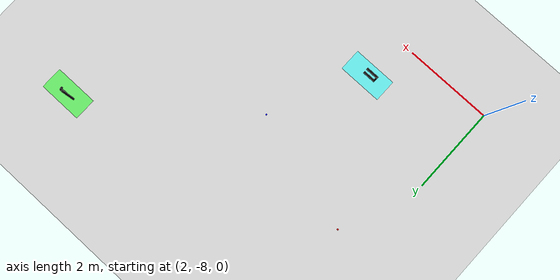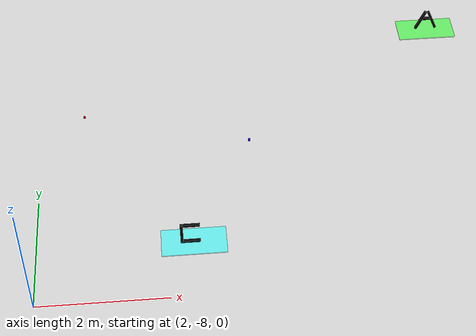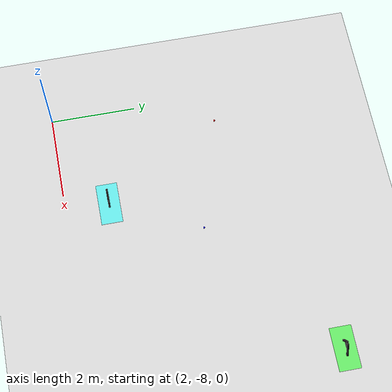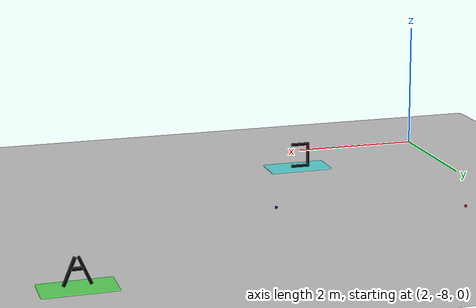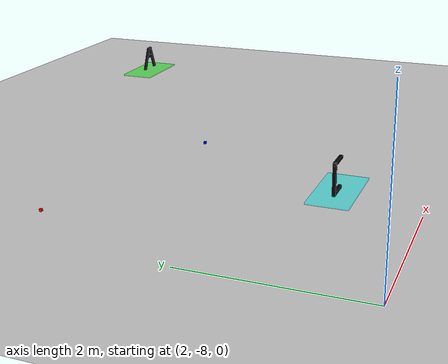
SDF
<sdf version="1.7">
 <world name="default">
  <model name="ground_plane">
   <static>1</static>
   <link name="link">
    <collision name="collision">
     <geometry><plane><normal>0 0 1</normal><size>100 100</size></plane></geometry>
     <surface><friction><ode><mu>100</mu><mu2>100</mu2></ode></friction></surface>
    </collision>
    <visual name="visual">
     <cast_shadows>0</cast_shadows>
     <geometry><plane><normal>0 0 1</normal><size>100 100</size></plane></geometry>
     <material>
      <script><uri>file://media/materials/scripts/gazebo.material</uri><name>Gazebo/Grey</name></script>
     </material>
    </visual>
    <velocity_decay><linear>0</linear><angular>0</angular></velocity_decay>
   </link>
  </model>
  <model name="red_cube_5">
   <pose>2.68763 -4.14012 0.015006 -0.000208 0.000208 -0</pose>
   <link name="link">
    <inertial>
     <mass>0.05</mass>
     <inertia><ixx>1</ixx><ixy>0</ixy><ixz>0</ixz><iyy>1</iyy><iyz>0</iyz><izz>1</izz></inertia>
    </inertial>
    <collision name="collision"><geometry><box><size>0.03 0.03 0.03</size></box></geometry></collision>
    <visual name="visual">
     <geometry><box><size>0.03 0.03 0.03</size></box></geometry>
     <material><ambient>1 0 0 1</ambient><diffuse>1 0 0 1</diffuse></material>
    </visual>
   </link>
  </model>
  <model name="blue_cube_1">
   <pose>5.39631 -4.90642 0.015 -2e-06 -0 -1e-06</pose>
   <link name="link">
    <inertial>
     <mass>0.05</mass>
     <inertia><ixx>1</ixx><ixy>0</ixy><ixz>0</ixz><iyy>1</iyy><iyz>0</iyz><izz>1</izz></inertia>
    </inertial>
    <collision name="collision"><geometry><box><size>0.03 0.03 0.03</size></box></geometry></collision>
    <visual name="visual">
     <geometry><box><size>0.03 0.03 0.03</size></box></geometry>
     <material><ambient>0 0 1 1</ambient><diffuse>0 0 1 1</diffuse></material>
    </visual>
   </link>
  </model>
  <model name="zone_a">
   <static>1</static>
   <pose>8.7887 -2.39628 0.01 0 -0 0</pose>
   <link name="base">
    <visual name="visual">
     <geometry><box><size>1 0.5 0.02</size></box></geometry>
     <material><ambient>0 1 0 0.5</ambient><diffuse>0 1 0 0.5</diffuse></material>
    </visual>
   </link>
   <link name="letter_A_1">
    <pose>-0.1 0 0.22 0 0.4 0</pose>
    <visual name="v">
     <geometry><box><size>0.04 0.04 0.4</size></box></geometry>
     <material><ambient>0 0 0 1</ambient><diffuse>0 0 0 1</diffuse></material>
    </visual>
   </link>
   <link name="letter_A_2">
    <pose>0.1 0 0.22 0 -0.4 0</pose>
    <visual name="v">
     <geometry><box><size>0.04 0.04 0.4</size></box></geometry>
     <material><ambient>0 0 0 1</ambient><diffuse>0 0 0 1</diffuse></material>
    </visual>
   </link>
   <link name="letter_A_3">
    <pose>0 0 0.25 0 -0 0</pose>
    <visual name="v">
     <geometry><box><size>0.15 0.04 0.04</size></box></geometry>
     <material><ambient>0 0 0 1</ambient><diffuse>0 0 0 1</diffuse></material>
    </visual>
   </link>
  </model>
  <model name="zone_c">
   <static>1</static>
   <pose>4.38528 -6.97661 0.01 0 -0 0</pose>
   <link name="base">
    <visual name="visual">
     <geometry><box><size>1 0.5 0.02</size></box></geometry>
     <material><ambient>0 1 1 0.5</ambient><diffuse>0 1 1 0.5</diffuse></material>
    </visual>
   </link>
   <link name="letter_C_1">
    <pose>-0.05 0 0.38 0 -0 0</pose>
    <visual name="v">
     <geometry><box><size>0.3 0.04 0.04</size></box></geometry>
     <material><ambient>0 0 0 1</ambient><diffuse>0 0 0 1</diffuse></material>
    </visual>
   </link>
   <link name="letter_C_2">
    <pose>-0.05 0 0.02 0 -0 0</pose>
    <visual name="v">
     <geometry><box><size>0.3 0.04 0.04</size></box></geometry>
     <material><ambient>0 0 0 1</ambient><diffuse>0 0 0 1</diffuse></material>
    </visual>
   </link>
   <link name="letter_C_3">
    <pose>-0.18 0 0.2 0 -0 0</pose>
    <visual name="v">
     <geometry><box><size>0.04 0.04 0.4</size></box></geometry>
     <material><ambient>0 0 0 1</ambient><diffuse>0 0 0 1</diffuse></material>
    </visual>
   </link>
  </model>
 </world>
</sdf>
